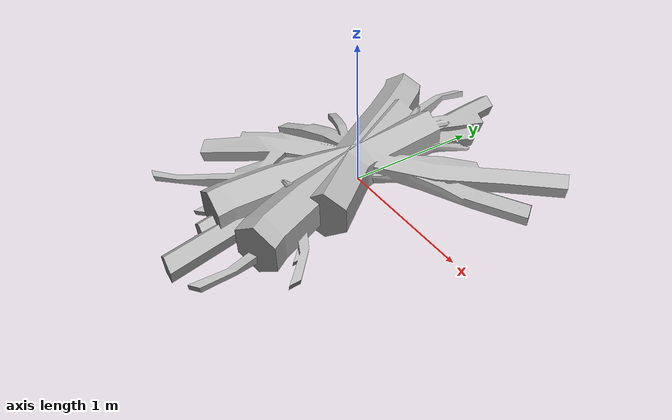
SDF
<?xml version="1.0" ?>
<sdf version="1.5">
  <model name="branche1_buoy">
    <link name="link">
      <inertial>
        <pose>0 0 -2 0 0 0</pose>
        <!-- Mass determined based on buoyancy geometry so object
             floats at mid-point of sphere -->
        <mass>20</mass>
        <!-- Mark only - based on cylinder -->
        <inertia>
          <ixx>1.0</ixx>
          <ixy>0</ixy>
          <ixz>0</ixz>
          <iyy>1.0</iyy>
          <iyz>0</iyz>
          <izz>0.1</izz>
        </inertia>
      </inertial>
        <collision name='upright'>
          <geometry>
            <cylinder>
              <radius>1.5</radius>
              <length>0.5</length>
            </cylinder>
          </geometry>
          <max_contacts>10</max_contacts>
          <surface>
            <contact>
              <ode/>
            </contact>
            <bounce/>
            <friction>
              <torsional>
                <ode/>
              </torsional>
              <ode/>
            </friction>
          </surface>
        </collision>
      <visual name="trunk_visual">
        <geometry>
	        <mesh><uri>model://branche1_buoy/meshes/branche1.dae</uri></mesh>
        </geometry>
      </visual>
    </link>

    <plugin name="TrunkBuoyancyPlugin" filename="libbuoyancy_gazebo_plugin.so">
      <wave_model>ocean_waves</wave_model>
      <fluid_density>1000</fluid_density>
      <fluid_level>0.0</fluid_level>
      <linear_drag>25.0</linear_drag>
      <angular_drag>2.0</angular_drag>
      <buoyancy name="buoyancy_sphere">
        <link_name>link</link_name>
        <pose>0 0 0.2 0 0 0</pose>
        <geometry>
          <sphere>
            <radius>0.325</radius>
          </sphere>
        </geometry>
      </buoyancy>
    </plugin>

    <plugin name="TrunkFollowPlugin" filename="libfollow_plugin.so">
      <link_name>link</link_name>
      <loop_forever>true</loop_forever>
      <line>
       <direction>0</direction>
       <length>-1</length>
       <force>100</force>
       <torque>1</torque>
   </line>
    </plugin>

  </model>

</sdf>
